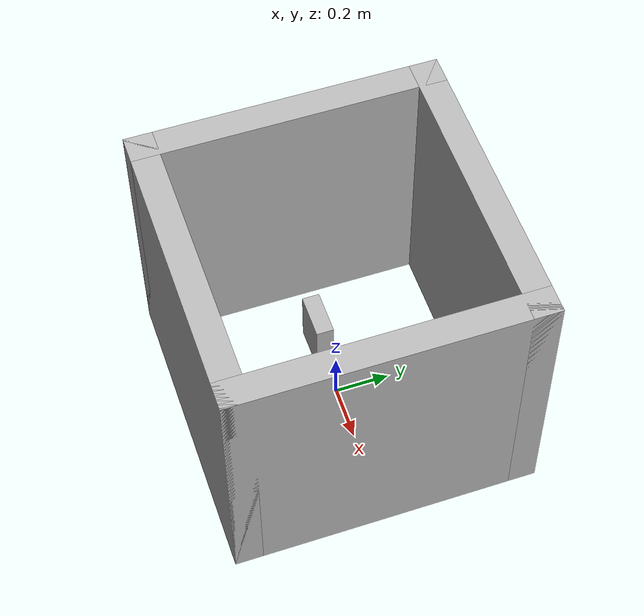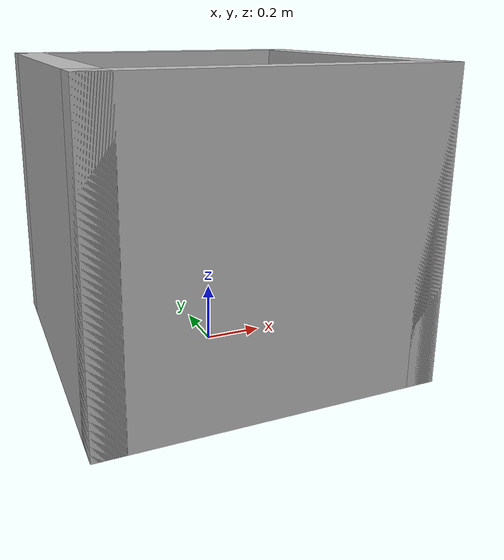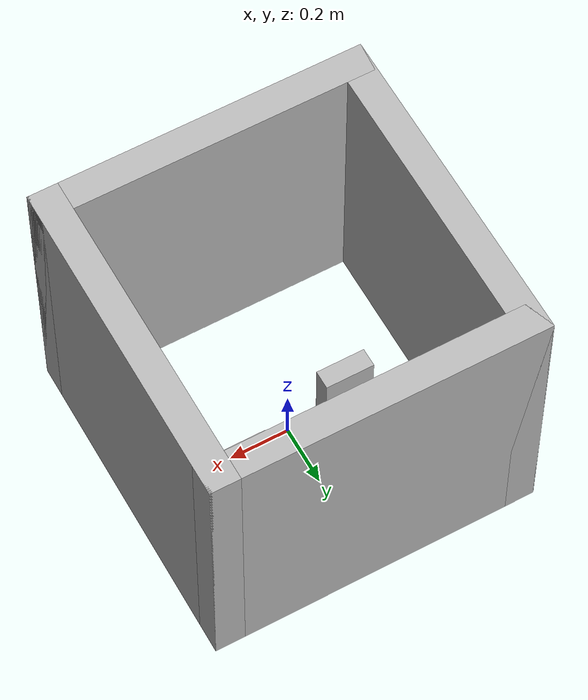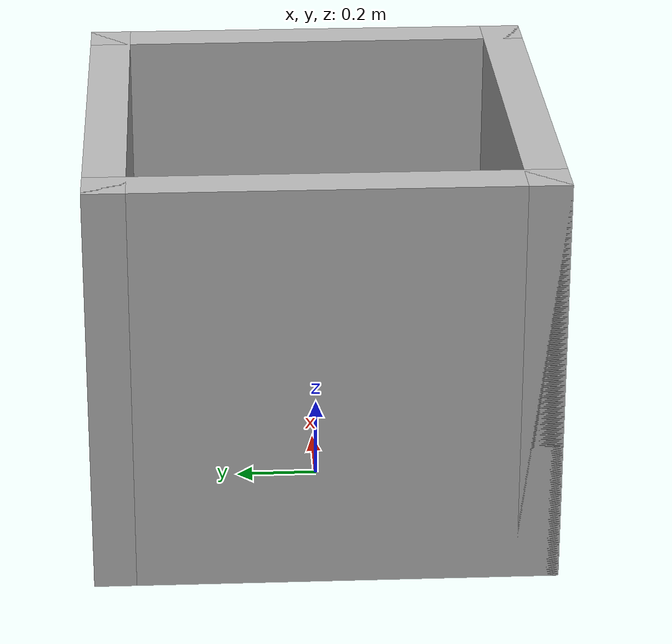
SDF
<sdf version="1.6">
 <world name="default">
  <include><uri>model://sun</uri></include>
  <plugin name="stepping_plugin" filename="libstepping_plugin.so"/>
  <plugin name="collision_map_plugin" filename="libcollision_map_plugin.so"/>
  <physics name="ode" type="ode">
   <real_time_update_rate>1000</real_time_update_rate>
   <ode>
    <solver><type>quick</type><friction_model>cone_model</friction_model></solver>
    <constraints><contact_surface_layer>0.002</contact_surface_layer></constraints>
   </ode>
  </physics>
  <include><uri>model://arena_1</uri><name>arena</name></include>
  <include><uri>model://cheezits</uri><pose>0.2 0.1 0 0 0 0</pose><name>box1</name></include>
  <include><uri>model://cheezits</uri><pose>-0.2 0 0 0 0 0</pose><name>box2</name></include>
 </world>
</sdf>

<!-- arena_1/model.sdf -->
<sdf version="1.5">
<model name="arena_1m">
    <static>true</static>
    <link name="north_wall">
      <pose>0 0.5 0.5 0 0 0</pose>
      <visual name="visual">
        <geometry>
          <box>
            <size>1.1 0.1 1</size>
          </box>
        </geometry>
      </visual>
      <collision name="collision">
        <geometry>
          <box>
            <size>1.1 0.1 1</size>
          </box>
        </geometry>
      </collision>
    </link>
    <link name="south_wall">
      <pose>0 -0.5 0.5 0 0 0</pose>
      <visual name="visual">
        <geometry>
          <box>
            <size>1.1 0.1 1</size>
          </box>
        </geometry>
      </visual>
      <collision name="collision">
        <geometry>
          <box>
            <size>1.1 0.1 1</size>
          </box>
        </geometry>
      </collision>
    </link>
    <link name="east_wall">
      <pose>0.5 0 0.5 0 0 0</pose>
      <visual name="visual">
        <geometry>
          <box>
            <size>0.1 1.1 1</size>
          </box>
        </geometry>
      </visual>
      <collision name="collision">
        <geometry>
          <box>
            <size>0.1 1.1 1</size>
          </box>
        </geometry>
      </collision>
    </link>
    <link name="west_wall">
      <pose>-0.5 0 0.5 0 0 0</pose>
      <visual name="visual">
        <geometry>
          <box>
            <size>0.1 1.1 1</size>
          </box>
        </geometry>
      </visual>
      <collision name="collision">
        <geometry>
          <box>
            <size>0.1 1.1 1</size>
          </box>
        </geometry>
      </collision>
    </link>
  </model>
</sdf>

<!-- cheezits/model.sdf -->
<sdf version="1.4">
  <model name="cheezits">
    <link name="link_1">
      <pose>0 0 0.10795 0 0 0</pose>
      <gravity>true</gravity>
      <inertial>
        <pose>0 0 0 0 0 0</pose>
        <inertia>
          <ixx>0.42204216666666666</ixx>
          <ixy>0</ixy>
          <ixz>0</ixz>
          <iyy>0.6155901666666667</iyy>
          <iyz>0</iyz>
          <izz>0.2607521666666666</izz>
        </inertia>
        <mass>100</mass>
      </inertial>
      <visual name="visual">
        <cast_shadows>0</cast_shadows>
        <geometry>
          <box>
            <size>0.1651 0.0635 0.2159</size>
          </box>
        </geometry>
      </visual>
      <collision name="box_collision">
        <geometry>
          <box>
            <size>0.1651 0.0635 0.2159</size>
          </box>
        </geometry>
        <surface>
          <friction>
            <ode>
              <mu>0.1</mu>
              <mu2>0.1</mu2>
            </ode>
          </friction>
        </surface>
      </collision>
    </link>
    <static>true</static>
  </model>
</sdf>
